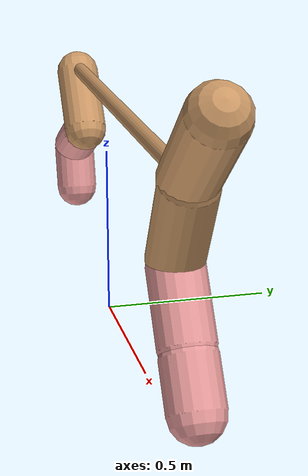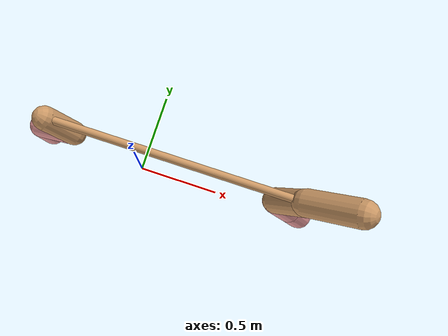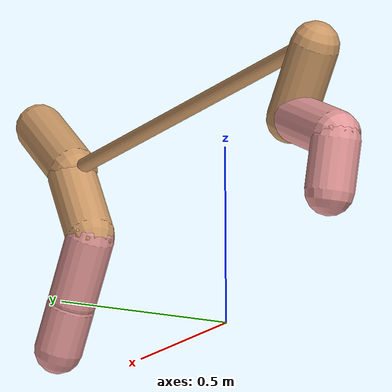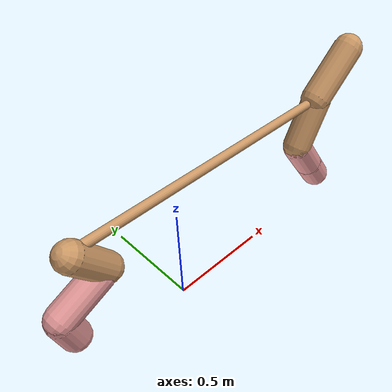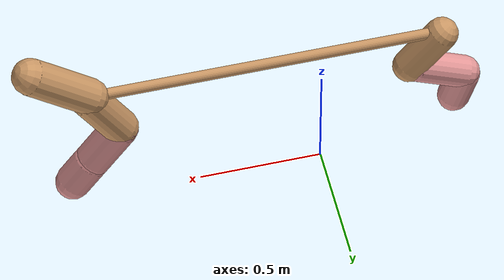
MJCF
<mujoco model="cheetah">
  <compiler angle="radian" coordinate="local" inertiafromgeom="true" settotalmass="14" />
  <default>
    <joint armature=".1" damping=".01" limited="true" solimplimit="0 .8 .03" solreflimit=".02 1" stiffness="8" />
    <geom conaffinity="0" condim="3" contype="1" friction="0.8 .1 .1" rgba="0.8 0.6 .4 1" solimp="0.0 0.8 0.01" solref="0.02 1" />
    <motor ctrllimited="true" ctrlrange="-1 1" />
  </default>
  <size nstack="300000" nuser_geom="1" />
  <option gravity="0 0 -9.81" timestep="0.01" />
  <worldbody>
    <body name="torso" pos="0.0 0.0 0.6673098303203802">
      <joint armature="0" axis="1 0 0" damping="0" limited="false" name="ignorex" pos="0 0 0" stiffness="0" type="slide" />
      <joint armature="0" axis="0 0 1" damping="0" limited="false" name="ignorez" pos="0 0 0" stiffness="0" type="slide" />
      <joint armature="0" axis="0 1 0" damping="0" limited="false" name="ignorey" pos="0 0 0" stiffness="0" type="hinge" />
      <geom fromto="-0.5 0.0 0.0 0.9534431874888345 0.0 0.0" name="torso" size="0.022319229025954342" type="capsule" />
      <geom axisangle="0 1 0 .87" name="head" pos="1.0534431874888344 0.0 0.1" size="0.07444647632536966 0.15" type="capsule" />

      <body name="bthigh" pos="-.5 0 0">
        <joint axis="0 1 0" damping="6" name="bthigh" pos="0 0 0" range="-.52 1.05" stiffness="240" type="hinge" />
        <geom axisangle="0 1 0 -3.8" name="bthigh" pos="0.07632347073657675 0.0 -0.09922051195754976" size="0.06694866022627388 0.10616760473371394" type="capsule" />
        <body name="bshin" pos="0.11264694147315348 0.0 -0.1884410239150995">
          <joint axis="0 1 0" damping="4.5" name="bshin" pos="0 0 0" range="-.785 .785" stiffness="180" type="hinge" />
          <geom axisangle="0 1 0 -2.03" name="bshin" pos="-0.10406956874018346 0.0 -0.05203478437009173" rgba="0.9 0.6 0.6 1" size="0.06694866022627388 0.10982855662108339" type="capsule" />
          <body name="bfoot" pos="-0.20813913748036691 0.0 -0.10406956874018346">
            <joint axis="0 1 0" damping="3" name="bfoot" pos="0 0 0" range="-.4 .785" stiffness="120" type="hinge" />
            <geom axisangle="0 1 0 -.27" name="bfoot" pos="0.022561814313416573 0.0 -0.07294986628004693" rgba="0.9 0.6 0.6 1" size="0.06694866022627388 0.06882589548254558" type="capsule" />
            <inertial mass="10" />
          </body>
        </body>
      </body>
      <body name="fthigh" pos="0.9534431874888345 0.0 0.0">
        <joint axis="0 1 0" damping="4.5" name="fthigh" pos="0 0 0" range="-1.5 0.8" stiffness="180" type="hinge" />
        <geom axisangle="0 1 0 .52" name="fthigh" pos="-0.06770844487479445 0.0 -0.1160716197853619" size="0.07316447311588602 0.12845209982490646" type="capsule" />
        <body name="fshin" pos="-0.1354168897495889 0.0 -0.2321432395707238">
          <joint axis="0 1 0" damping="3" name="fshin" pos="0 0 0" range="-1.2 1.1" stiffness="120" type="hinge" />
          <geom axisangle="0 1 0 -.6" name="fshin" pos="0.06287780620459772 0.0 -0.08706157782175068" rgba="0.9 0.6 0.6 1" size="0.07316447311588602 0.1023753577551886" type="capsule" />
          <body name="ffoot" pos="0.12575561240919544 0.0 -0.17412315564350136">
            <joint axis="0 1 0" damping="1.5" name="ffoot" pos="0 0 0" range="-3.1 -0.3" stiffness="60" type="hinge" />
            <geom axisangle="0 1 0 -.6" name="ffoot" pos="0.04370562550304325 0.0 -0.06798652856028951" rgba="0.9 0.6 0.6 1" size="0.07316447311588602 0.06760636832889814" type="capsule" />
            <inertial mass="10" />
          </body>
        </body>
      </body>
    </body>
  </worldbody>
  <actuator>
    <motor gear="120" joint="bthigh" name="bthigh" />
    <motor gear="90" joint="bshin" name="bshin" />
    <motor gear="60" joint="bfoot" name="bfoot" />
    <motor gear="120" joint="fthigh" name="fthigh" />
    <motor gear="60" joint="fshin" name="fshin" />
    <motor gear="30" joint="ffoot" name="ffoot" />
  </actuator>
</mujoco>
